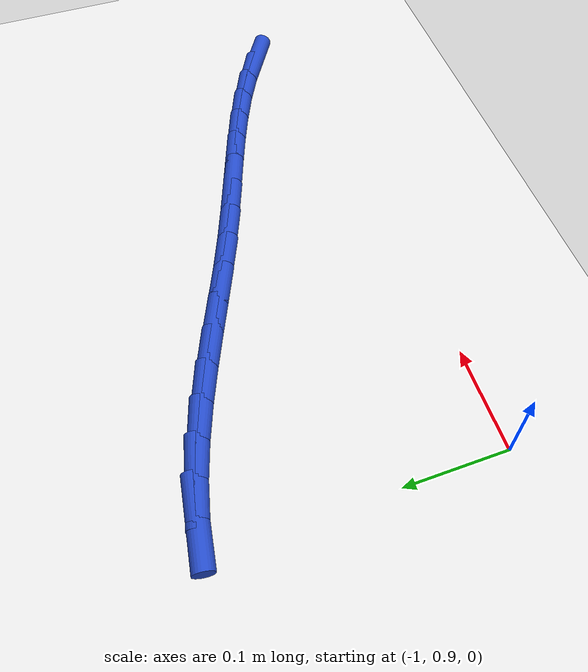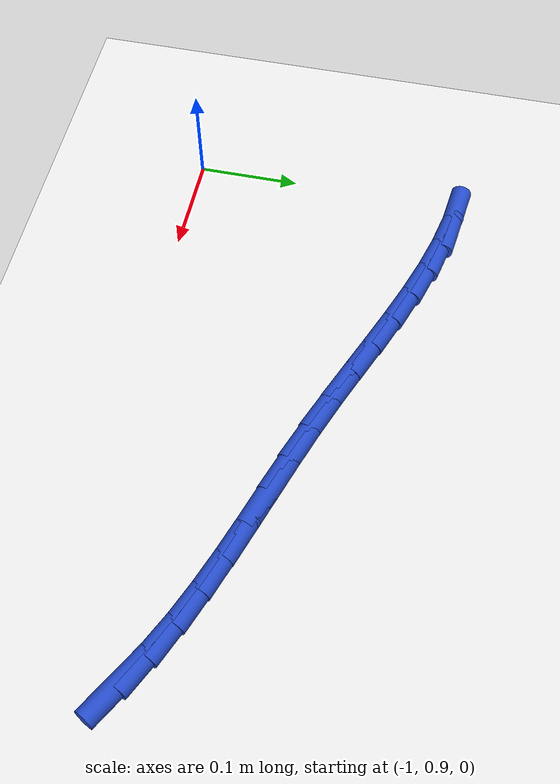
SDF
<sdf version="1.6">
 <world name="default">
  <model name="ground_plane">
   <static>1</static>
   <link name="link">
    <collision name="collision">
     <geometry><plane><normal>0 0 1</normal><size>100 100</size></plane></geometry>
     <surface><friction><ode><mu>100</mu><mu2>50</mu2></ode></friction></surface>
    </collision>
    <visual name="visual">
     <cast_shadows>0</cast_shadows>
     <geometry><plane><normal>0 0 1</normal><size>100 100</size></plane></geometry>
     <material>
      <script><uri>file://media/materials/scripts/gazebo.material</uri><name>Gazebo/WhiteGlow</name></script>
     </material>
    </visual>
   </link>
  </model>
  <model name="line">
   <link name="link_32">
    <pose>-0.45136746682825757 0.9735181878658834 0.01 0 1.57 -0.5161398221864067</pose>
    <collision name="collision">
     <geometry><cylinder><radius>0.01</radius><length>0.08</length></cylinder></geometry>
    </collision>
    <visual name="visual">
     <material>
      <script><name>Gazebo/Blue</name><uri>file://media/materials/scripts/gazebo.material</uri></script>
     </material>
     <geometry><cylinder><radius>0.01</radius><length>0.08</length></cylinder></geometry>
    </visual>
   </link>
   <link name="link_33">
    <pose>-0.48004787459840714 0.9897928124086621 0.01 0 1.57 -0.4469389475374719</pose>
    <collision name="collision">
     <geometry><cylinder><radius>0.01</radius><length>0.08</length></cylinder></geometry>
    </collision>
    <visual name="visual">
     <material>
      <script><name>Gazebo/Blue</name><uri>file://media/materials/scripts/gazebo.material</uri></script>
     </material>
     <geometry><cylinder><radius>0.01</radius><length>0.08</length></cylinder></geometry>
    </visual>
   </link>
   <link name="link_34">
    <pose>-0.5102494850173985 1.0042680004052036 0.01 0 1.57 -0.3933112020701655</pose>
    <collision name="collision">
     <geometry><cylinder><radius>0.01</radius><length>0.08</length></cylinder></geometry>
    </collision>
    <visual name="visual">
     <material>
      <script><name>Gazebo/Blue</name><uri>file://media/materials/scripts/gazebo.material</uri></script>
     </material>
     <geometry><cylinder><radius>0.01</radius><length>0.08</length></cylinder></geometry>
    </visual>
   </link>
   <link name="link_35">
    <pose>-0.5417233383227925 1.017327474304832 0.01 0 1.57 -0.3544757792458659</pose>
    <collision name="collision">
     <geometry><cylinder><radius>0.01</radius><length>0.08</length></cylinder></geometry>
    </collision>
    <visual name="visual">
     <material>
      <script><name>Gazebo/Blue</name><uri>file://media/materials/scripts/gazebo.material</uri></script>
     </material>
     <geometry><cylinder><radius>0.01</radius><length>0.08</length></cylinder></geometry>
    </visual>
   </link>
   <link name="link_36">
    <pose>-0.5742204747521503 1.0293549565568727 0.01 0 1.57 -0.3295402285301992</pose>
    <collision name="collision">
     <geometry><cylinder><radius>0.01</radius><length>0.08</length></cylinder></geometry>
    </collision>
    <visual name="visual">
     <material>
      <script><name>Gazebo/Blue</name><uri>file://media/materials/scripts/gazebo.material</uri></script>
     </material>
     <geometry><cylinder><radius>0.01</radius><length>0.08</length></cylinder></geometry>
    </visual>
   </link>
   <link name="link_37">
    <pose>-0.6074919345430333 1.040734169610651 0.01 0 1.57 -0.3177256534506979</pose>
    <collision name="collision">
     <geometry><cylinder><radius>0.01</radius><length>0.08</length></cylinder></geometry>
    </collision>
    <visual name="visual">
     <material>
      <script><name>Gazebo/Blue</name><uri>file://media/materials/scripts/gazebo.material</uri></script>
     </material>
     <geometry><cylinder><radius>0.01</radius><length>0.08</length></cylinder></geometry>
    </visual>
   </link>
   <link name="link_38">
    <pose>-0.6412887579330023 1.0518488359154907 0.01 0 1.57 -0.3184743240165572</pose>
    <collision name="collision">
     <geometry><cylinder><radius>0.01</radius><length>0.08</length></cylinder></geometry>
    </collision>
    <visual name="visual">
     <material>
      <script><name>Gazebo/Blue</name><uri>file://media/materials/scripts/gazebo.material</uri></script>
     </material>
     <geometry><cylinder><radius>0.01</radius><length>0.08</length></cylinder></geometry>
    </visual>
   </link>
   <link name="link_39">
    <pose>-0.6753619851596188 1.0630826779207183 0.01 0 1.57 -0.3314798272515674</pose>
    <collision name="collision">
     <geometry><cylinder><radius>0.01</radius><length>0.08</length></cylinder></geometry>
    </collision>
    <visual name="visual">
     <material>
      <script><name>Gazebo/Blue</name><uri>file://media/materials/scripts/gazebo.material</uri></script>
     </material>
     <geometry><cylinder><radius>0.01</radius><length>0.08</length></cylinder></geometry>
    </visual>
   </link>
   <link name="link_40">
    <pose>-0.7094626564604437 1.0748194180756578 0.01 0 1.57 -0.35572074002398557</pose>
    <collision name="collision">
     <geometry><cylinder><radius>0.01</radius><length>0.08</length></cylinder></geometry>
    </collision>
    <visual name="visual">
     <material>
      <script><name>Gazebo/Blue</name><uri>file://media/materials/scripts/gazebo.material</uri></script>
     </material>
     <geometry><cylinder><radius>0.01</radius><length>0.08</length></cylinder></geometry>
    </visual>
   </link>
   <link name="link_41">
    <pose>-0.7433518754834928 1.0874101148099824 0.01 0 1.57 -0.3771212548321683</pose>
    <collision name="collision">
     <geometry><cylinder><radius>0.01</radius><length>0.08</length></cylinder></geometry>
    </collision>
    <visual name="visual">
     <material>
      <script><name>Gazebo/Blue</name><uri>file://media/materials/scripts/gazebo.material</uri></script>
     </material>
     <geometry><cylinder><radius>0.01</radius><length>0.08</length></cylinder></geometry>
    </visual>
   </link>
   <link name="link_42">
    <pose>-0.7769421208601217 1.100714490593918 0.01 0 1.57 -0.3848954030329804</pose>
    <collision name="collision">
     <geometry><cylinder><radius>0.01</radius><length>0.08</length></cylinder></geometry>
    </collision>
    <visual name="visual">
     <material>
      <script><name>Gazebo/Blue</name><uri>file://media/materials/scripts/gazebo.material</uri></script>
     </material>
     <geometry><cylinder><radius>0.01</radius><length>0.08</length></cylinder></geometry>
    </visual>
   </link>
   <link name="link_43">
    <pose>-0.8102628087235578 1.1142127098068642 0.01 0 1.57 -0.37865377219817575</pose>
    <collision name="collision">
     <geometry><cylinder><radius>0.01</radius><length>0.08</length></cylinder></geometry>
    </collision>
    <visual name="visual">
     <material>
      <script><name>Gazebo/Blue</name><uri>file://media/materials/scripts/gazebo.material</uri></script>
     </material>
     <geometry><cylinder><radius>0.01</radius><length>0.08</length></cylinder></geometry>
    </visual>
   </link>
   <link name="link_44">
    <pose>-0.843346386950068 1.1273750963358018 0.01 0 1.57 -0.35789801835958807</pose>
    <collision name="collision">
     <geometry><cylinder><radius>0.01</radius><length>0.08</length></cylinder></geometry>
    </collision>
    <visual name="visual">
     <material>
      <script><name>Gazebo/Blue</name><uri>file://media/materials/scripts/gazebo.material</uri></script>
     </material>
     <geometry><cylinder><radius>0.01</radius><length>0.08</length></cylinder></geometry>
    </visual>
   </link>
   <link name="link_45">
    <pose>-0.8762253034159193 1.139671974067712 0.01 0 1.57 -0.3217356572306002</pose>
    <collision name="collision">
     <geometry><cylinder><radius>0.01</radius><length>0.08</length></cylinder></geometry>
    </collision>
    <visual name="visual">
     <material>
      <script><name>Gazebo/Blue</name><uri>file://media/materials/scripts/gazebo.material</uri></script>
     </material>
     <geometry><cylinder><radius>0.01</radius><length>0.08</length></cylinder></geometry>
    </visual>
   </link>
   <link name="link_46">
    <pose>-0.9089320059973791 1.1505736668895767 0.01 0 1.57 -0.2689634394208477</pose>
    <collision name="collision">
     <geometry><cylinder><radius>0.01</radius><length>0.08</length></cylinder></geometry>
    </collision>
    <visual name="visual">
     <material>
      <script><name>Gazebo/Blue</name><uri>file://media/materials/scripts/gazebo.material</uri></script>
     </material>
     <geometry><cylinder><radius>0.01</radius><length>0.08</length></cylinder></geometry>
    </visual>
   </link>
   <link name="link_47">
    <pose>-0.9414989425707143 1.1595504986883767 0.01 0 1.57 -0.19829506514048606</pose>
    <collision name="collision">
     <geometry><cylinder><radius>0.01</radius><length>0.08</length></cylinder></geometry>
    </collision>
    <visual name="visual">
     <material>
      <script><name>Gazebo/Blue</name><uri>file://media/materials/scripts/gazebo.material</uri></script>
     </material>
     <geometry><cylinder><radius>0.01</radius><length>0.08</length></cylinder></geometry>
    </visual>
   </link>
   <link name="link_48">
    <pose>-0.973958561012192 1.1660727933510937 0.01 0 1.57 -0.10881988776421461</pose>
    <collision name="collision">
     <geometry><cylinder><radius>0.01</radius><length>0.08</length></cylinder></geometry>
    </collision>
    <visual name="visual">
     <material>
      <script><name>Gazebo/Blue</name><uri>file://media/materials/scripts/gazebo.material</uri></script>
     </material>
     <geometry><cylinder><radius>0.01</radius><length>0.08</length></cylinder></geometry>
    </visual>
   </link>
  </model>
 </world>
</sdf>
